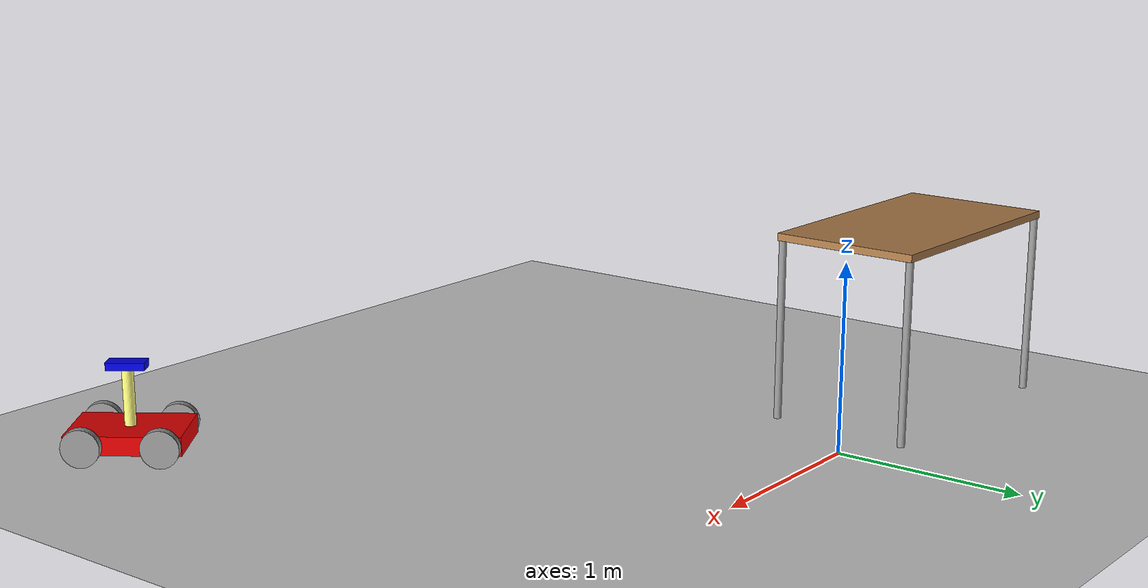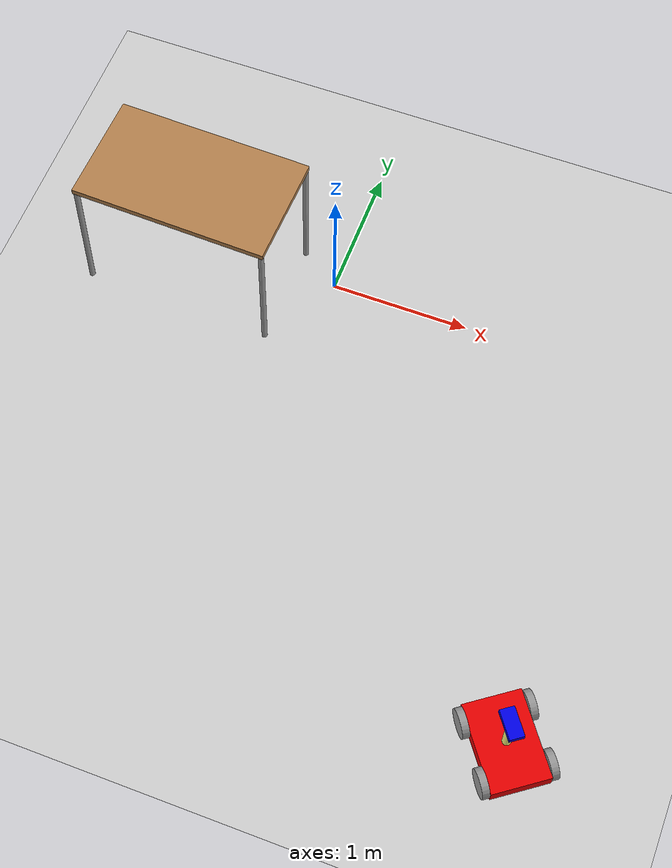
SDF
<sdf version="1.6">
 <world name="default">
  <model name="ground_plane">
   <static>1</static>
   <link name="link">
    <collision name="collision">
     <geometry><plane><normal>0 0 1</normal><size>100 100</size></plane></geometry>
     <surface><friction><ode><mu>100</mu><mu2>50</mu2></ode></friction></surface>
    </collision>
    <visual name="visual">
     <cast_shadows>0</cast_shadows>
     <geometry><plane><normal>0 0 1</normal><size>100 100</size></plane></geometry>
     <material>
      <script><uri>file://media/materials/scripts/gazebo.material</uri><name>Gazebo/Grey</name></script>
     </material>
    </visual>
   </link>
  </model>
  <model name="table_0_clone_clone_clone_clone">
   <static>0</static>
   <link name="link">
    <collision name="surface">
     <pose>0 0 1 0 -0 0</pose>
     <geometry><box><size>1.5 0.8 0.03</size></box></geometry>
     <surface><friction><ode><mu>0.6</mu><mu2>0.6</mu2></ode></friction></surface>
    </collision>
    <visual name="visual1">
     <pose>0 0 1 0 -0 0</pose>
     <geometry><box><size>1.4 0.8 0.04</size></box></geometry>
     <material>
      <script><uri>file://media/materials/scripts/gazebo.material</uri><name>Gazebo/Wood</name></script>
     </material>
    </visual>
    <collision name="front_left_leg">
     <pose>0.68 0.38 0.5 0 -0 0</pose>
     <geometry><cylinder><radius>0.02</radius><length>1</length></cylinder></geometry>
    </collision>
    <visual name="front_left_leg">
     <pose>0.68 0.38 0.5 0 -0 0</pose>
     <geometry><cylinder><radius>0.02</radius><length>1</length></cylinder></geometry>
     <material>
      <script><uri>file://media/materials/scripts/gazebo.material</uri><name>Gazebo/Grey</name></script>
     </material>
    </visual>
    <collision name="front_right_leg">
     <pose>0.68 -0.38 0.5 0 -0 0</pose>
     <geometry><cylinder><radius>0.02</radius><length>1</length></cylinder></geometry>
    </collision>
    <visual name="front_right_leg">
     <pose>0.68 -0.38 0.5 0 -0 0</pose>
     <geometry><cylinder><radius>0.02</radius><length>1</length></cylinder></geometry>
     <material>
      <script><uri>file://media/materials/scripts/gazebo.material</uri><name>Gazebo/Grey</name></script>
     </material>
    </visual>
    <collision name="back_right_leg">
     <pose>-0.68 -0.38 0.5 0 -0 0</pose>
     <geometry><cylinder><radius>0.02</radius><length>1</length></cylinder></geometry>
    </collision>
    <visual name="back_right_leg">
     <pose>-0.68 -0.38 0.5 0 -0 0</pose>
     <geometry><cylinder><radius>0.02</radius><length>1</length></cylinder></geometry>
     <material>
      <script><uri>file://media/materials/scripts/gazebo.material</uri><name>Gazebo/Grey</name></script>
     </material>
    </visual>
    <collision name="back_left_leg">
     <pose>-0.68 0.38 0.5 0 -0 0</pose>
     <geometry><cylinder><radius>0.02</radius><length>1</length></cylinder></geometry>
    </collision>
    <visual name="back_left_leg">
     <pose>-0.68 0.38 0.5 0 -0 0</pose>
     <geometry><cylinder><radius>0.02</radius><length>1</length></cylinder></geometry>
     <material>
      <script><uri>file://media/materials/scripts/gazebo.material</uri><name>Gazebo/Grey</name></script>
     </material>
    </visual>
    <inertial>
     <inertia><ixx>1</ixx><ixy>0</ixy><ixz>0</ixz><iyy>1</iyy><iyz>0</iyz><izz>1</izz></inertia>
     <mass>1</mass>
    </inertial>
   </link>
   <pose>-0.984849 -0.161 -9e-06 0 -1e-06 -0.030669</pose>
  </model>
  <model name="MyInspectionRobot">
   <link name="link_10">
    <pose>0 0 0.37 0 -0 0</pose>
    <inertial>
     <mass>1</mass>
     <inertia>
      <ixx>0.166667</ixx>
      <ixy>0</ixy>
      <ixz>0</ixz>
      <iyy>0.166667</iyy>
      <iyz>0</iyz>
      <izz>0.166667</izz>
     </inertia>
    </inertial>
    <visual name="visual">
     <geometry><box><size>0.2 0.1 0.04</size></box></geometry>
     <material>
      <lighting>1</lighting>
      <script><uri>file://media/materials/scripts/gazebo.material</uri><name>Gazebo/Grey</name></script>
      <ambient>0.3 0.3 0.3 1</ambient>
      <diffuse>0 0 0.9 1</diffuse>
      <specular>0.01 0.01 0.01 1</specular>
      <emissive>0 0 0 1</emissive>
      <shader type="vertex"><normal_map>__default__</normal_map></shader>
     </material>
    </visual>
    <collision name="collision">
     <geometry><box><size>0.2 0.1 0.04</size></box></geometry>
     <surface>
      <friction>
       <ode><mu>1</mu><mu2>1</mu2><fdir1>0 0 0</fdir1><slip1>0</slip1><slip2>0</slip2></ode>
       <torsional>
        <coefficient>1</coefficient>
        <patch_radius>0</patch_radius>
        <surface_radius>0</surface_radius>
        <use_patch_radius>1</use_patch_radius>
        <ode><slip>0</slip></ode>
       </torsional>
      </friction>
      <bounce><restitution_coefficient>0</restitution_coefficient><threshold>1e+06</threshold></bounce>
      <contact>
       <collide_without_contact>0</collide_without_contact>
       <collide_without_contact_bitmask>1</collide_without_contact_bitmask>
       <collide_bitmask>1</collide_bitmask>
       <ode>
        <soft_cfm>0</soft_cfm>
        <soft_erp>0.2</soft_erp>
        <kp>1e+13</kp>
        <kd>1</kd>
        <max_vel>0.01</max_vel>
        <min_depth>0</min_depth>
       </ode>
       <bullet>
        <split_impulse>1</split_impulse>
        <split_impulse_penetration_threshold>-0.01</split_impulse_penetration_threshold>
        <soft_cfm>0</soft_cfm>
        <soft_erp>0.2</soft_erp>
        <kp>1e+13</kp>
        <kd>1</kd>
       </bullet>
      </contact>
     </surface>
    </collision>
   </link>
   <link name="link_6">
    <inertial>
     <mass>1</mass>
     <inertia>
      <ixx>0.166667</ixx>
      <ixy>0</ixy>
      <ixz>0</ixz>
      <iyy>0.166667</iyy>
      <iyz>0</iyz>
      <izz>0.166667</izz>
     </inertia>
    </inertial>
    <visual name="visual">
     <geometry><box><size>0.6 0.4 0.1</size></box></geometry>
     <material>
      <lighting>1</lighting>
      <script><uri>file://media/materials/scripts/gazebo.material</uri><name>Gazebo/Grey</name></script>
      <ambient>0.3 0.3 0.3 1</ambient>
      <diffuse>0.9 0 0 1</diffuse>
      <specular>0.01 0.01 0.01 1</specular>
      <emissive>0 0 0 1</emissive>
      <shader type="vertex"><normal_map>__default__</normal_map></shader>
     </material>
    </visual>
    <collision name="collision">
     <geometry><box><size>0.6 0.4 0.1</size></box></geometry>
     <surface>
      <friction>
       <ode><mu>1</mu><mu2>1</mu2><fdir1>0 0 0</fdir1><slip1>0</slip1><slip2>0</slip2></ode>
       <torsional>
        <coefficient>1</coefficient>
        <patch_radius>0</patch_radius>
        <surface_radius>0</surface_radius>
        <use_patch_radius>1</use_patch_radius>
        <ode><slip>0</slip></ode>
       </torsional>
      </friction>
      <bounce><restitution_coefficient>0</restitution_coefficient><threshold>1e+06</threshold></bounce>
      <contact>
       <collide_without_contact>0</collide_without_contact>
       <collide_without_contact_bitmask>1</collide_without_contact_bitmask>
       <collide_bitmask>1</collide_bitmask>
       <ode>
        <soft_cfm>0</soft_cfm>
        <soft_erp>0.2</soft_erp>
        <kp>1e+13</kp>
        <kd>1</kd>
        <max_vel>0.01</max_vel>
        <min_depth>0</min_depth>
       </ode>
       <bullet>
        <split_impulse>1</split_impulse>
        <split_impulse_penetration_threshold>-0.01</split_impulse_penetration_threshold>
        <soft_cfm>0</soft_cfm>
        <soft_erp>0.2</soft_erp>
        <kp>1e+13</kp>
        <kd>1</kd>
       </bullet>
      </contact>
     </surface>
    </collision>
   </link>
   <link name="link_8">
    <pose>-0.2 -0.22501 0 1.5707 -0 0</pose>
    <inertial>
     <mass>1</mass>
     <inertia><ixx>0.145833</ixx><ixy>0</ixy><ixz>0</ixz><iyy>0.145833</iyy><iyz>0</iyz><izz>0.125</izz></inertia>
    </inertial>
    <visual name="visual">
     <geometry><cylinder><radius>0.1</radius><length>0.05</length></cylinder></geometry>
     <material>
      <lighting>1</lighting>
      <script><uri>file://media/materials/scripts/gazebo.material</uri><name>Gazebo/Grey</name></script>
      <ambient>0.3 0.3 0.3 1</ambient>
      <diffuse>0 0 0 1</diffuse>
      <specular>0.01 0.01 0.01 1</specular>
      <emissive>0 0 0 1</emissive>
      <shader type="vertex"><normal_map>__default__</normal_map></shader>
     </material>
    </visual>
    <collision name="collision">
     <geometry><cylinder><radius>0.1</radius><length>0.05</length></cylinder></geometry>
     <surface>
      <friction>
       <ode><mu>1</mu><mu2>1</mu2><fdir1>0 0 0</fdir1><slip1>0</slip1><slip2>0</slip2></ode>
       <torsional>
        <coefficient>1</coefficient>
        <patch_radius>0</patch_radius>
        <surface_radius>0</surface_radius>
        <use_patch_radius>1</use_patch_radius>
        <ode><slip>0</slip></ode>
       </torsional>
      </friction>
      <bounce><restitution_coefficient>0</restitution_coefficient><threshold>1e+06</threshold></bounce>
      <contact>
       <collide_without_contact>0</collide_without_contact>
       <collide_without_contact_bitmask>1</collide_without_contact_bitmask>
       <collide_bitmask>1</collide_bitmask>
       <ode>
        <soft_cfm>0</soft_cfm>
        <soft_erp>0.2</soft_erp>
        <kp>1e+13</kp>
        <kd>1</kd>
        <max_vel>0.01</max_vel>
        <min_depth>0</min_depth>
       </ode>
       <bullet>
        <split_impulse>1</split_impulse>
        <split_impulse_penetration_threshold>-0.01</split_impulse_penetration_threshold>
        <soft_cfm>0</soft_cfm>
        <soft_erp>0.2</soft_erp>
        <kp>1e+13</kp>
        <kd>1</kd>
       </bullet>
      </contact>
     </surface>
    </collision>
   </link>
   <link name="link_8_clone">
    <pose>-0.2 0.22501 0 1.5707 -0 0</pose>
    <inertial>
     <mass>1</mass>
     <inertia><ixx>0.145833</ixx><ixy>0</ixy><ixz>0</ixz><iyy>0.145833</iyy><iyz>0</iyz><izz>0.125</izz></inertia>
    </inertial>
    <visual name="visual">
     <geometry><cylinder><radius>0.1</radius><length>0.05</length></cylinder></geometry>
     <material>
      <lighting>1</lighting>
      <script><uri>file://media/materials/scripts/gazebo.material</uri><name>Gazebo/Grey</name></script>
      <ambient>0.3 0.3 0.3 1</ambient>
      <diffuse>0 0 0 1</diffuse>
      <specular>0.01 0.01 0.01 1</specular>
      <emissive>0 0 0 1</emissive>
      <shader type="vertex"><normal_map>__default__</normal_map></shader>
     </material>
    </visual>
    <collision name="collision">
     <geometry><cylinder><radius>0.1</radius><length>0.05</length></cylinder></geometry>
     <surface>
      <friction>
       <ode><mu>1</mu><mu2>1</mu2><fdir1>0 0 0</fdir1><slip1>0</slip1><slip2>0</slip2></ode>
       <torsional>
        <coefficient>1</coefficient>
        <patch_radius>0</patch_radius>
        <surface_radius>0</surface_radius>
        <use_patch_radius>1</use_patch_radius>
        <ode><slip>0</slip></ode>
       </torsional>
      </friction>
      <bounce><restitution_coefficient>0</restitution_coefficient><threshold>1e+06</threshold></bounce>
      <contact>
       <collide_without_contact>0</collide_without_contact>
       <collide_without_contact_bitmask>1</collide_without_contact_bitmask>
       <collide_bitmask>1</collide_bitmask>
       <ode>
        <soft_cfm>0</soft_cfm>
        <soft_erp>0.2</soft_erp>
        <kp>1e+13</kp>
        <kd>1</kd>
        <max_vel>0.01</max_vel>
        <min_depth>0</min_depth>
       </ode>
       <bullet>
        <split_impulse>1</split_impulse>
        <split_impulse_penetration_threshold>-0.01</split_impulse_penetration_threshold>
        <soft_cfm>0</soft_cfm>
        <soft_erp>0.2</soft_erp>
        <kp>1e+13</kp>
        <kd>1</kd>
       </bullet>
      </contact>
     </surface>
    </collision>
   </link>
   <link name="link_8_clone_clone">
    <pose>0.2 -0.22501 0 1.5707 -0 0</pose>
    <inertial>
     <mass>1</mass>
     <inertia><ixx>0.145833</ixx><ixy>0</ixy><ixz>0</ixz><iyy>0.145833</iyy><iyz>0</iyz><izz>0.125</izz></inertia>
    </inertial>
    <visual name="visual">
     <geometry><cylinder><radius>0.1</radius><length>0.05</length></cylinder></geometry>
     <material>
      <lighting>1</lighting>
      <script><uri>file://media/materials/scripts/gazebo.material</uri><name>Gazebo/Grey</name></script>
      <ambient>0.3 0.3 0.3 1</ambient>
      <diffuse>0 0 0 1</diffuse>
      <specular>0.01 0.01 0.01 1</specular>
      <emissive>0 0 0 1</emissive>
      <shader type="vertex"><normal_map>__default__</normal_map></shader>
     </material>
    </visual>
    <collision name="collision">
     <geometry><cylinder><radius>0.1</radius><length>0.05</length></cylinder></geometry>
     <surface>
      <friction>
       <ode><mu>1</mu><mu2>1</mu2><fdir1>0 0 0</fdir1><slip1>0</slip1><slip2>0</slip2></ode>
       <torsional>
        <coefficient>1</coefficient>
        <patch_radius>0</patch_radius>
        <surface_radius>0</surface_radius>
        <use_patch_radius>1</use_patch_radius>
        <ode><slip>0</slip></ode>
       </torsional>
      </friction>
      <bounce><restitution_coefficient>0</restitution_coefficient><threshold>1e+06</threshold></bounce>
      <contact>
       <collide_without_contact>0</collide_without_contact>
       <collide_without_contact_bitmask>1</collide_without_contact_bitmask>
       <collide_bitmask>1</collide_bitmask>
       <ode>
        <soft_cfm>0</soft_cfm>
        <soft_erp>0.2</soft_erp>
        <kp>1e+13</kp>
        <kd>1</kd>
        <max_vel>0.01</max_vel>
        <min_depth>0</min_depth>
       </ode>
       <bullet>
        <split_impulse>1</split_impulse>
        <split_impulse_penetration_threshold>-0.01</split_impulse_penetration_threshold>
        <soft_cfm>0</soft_cfm>
        <soft_erp>0.2</soft_erp>
        <kp>1e+13</kp>
        <kd>1</kd>
       </bullet>
      </contact>
     </surface>
    </collision>
   </link>
   <link name="link_8_clone_clone_clone">
    <pose>0.2 0.22501 0 1.5707 -0 0</pose>
    <inertial>
     <mass>1</mass>
     <inertia><ixx>0.145833</ixx><ixy>0</ixy><ixz>0</ixz><iyy>0.145833</iyy><iyz>0</iyz><izz>0.125</izz></inertia>
    </inertial>
    <visual name="visual">
     <geometry><cylinder><radius>0.1</radius><length>0.05</length></cylinder></geometry>
     <material>
      <lighting>1</lighting>
      <script><uri>file://media/materials/scripts/gazebo.material</uri><name>Gazebo/Grey</name></script>
      <ambient>0.3 0.3 0.3 1</ambient>
      <diffuse>0 0 0 1</diffuse>
      <specular>0.01 0.01 0.01 1</specular>
      <emissive>0 0 0 1</emissive>
      <shader type="vertex"><normal_map>__default__</normal_map></shader>
     </material>
    </visual>
    <collision name="collision">
     <geometry><cylinder><radius>0.1</radius><length>0.05</length></cylinder></geometry>
     <surface>
      <friction>
       <ode><mu>1</mu><mu2>1</mu2><fdir1>0 0 0</fdir1><slip1>0</slip1><slip2>0</slip2></ode>
       <torsional>
        <coefficient>1</coefficient>
        <patch_radius>0</patch_radius>
        <surface_radius>0</surface_radius>
        <use_patch_radius>1</use_patch_radius>
        <ode><slip>0</slip></ode>
       </torsional>
      </friction>
      <bounce><restitution_coefficient>0</restitution_coefficient><threshold>1e+06</threshold></bounce>
      <contact>
       <collide_without_contact>0</collide_without_contact>
       <collide_without_contact_bitmask>1</collide_without_contact_bitmask>
       <collide_bitmask>1</collide_bitmask>
       <ode>
        <soft_cfm>0</soft_cfm>
        <soft_erp>0.2</soft_erp>
        <kp>1e+13</kp>
        <kd>1</kd>
        <max_vel>0.01</max_vel>
        <min_depth>0</min_depth>
       </ode>
       <bullet>
        <split_impulse>1</split_impulse>
        <split_impulse_penetration_threshold>-0.01</split_impulse_penetration_threshold>
        <soft_cfm>0</soft_cfm>
        <soft_erp>0.2</soft_erp>
        <kp>1e+13</kp>
        <kd>1</kd>
       </bullet>
      </contact>
     </surface>
    </collision>
   </link>
   <link name="link_9">
    <pose>0 0 0.2 0 -0 0</pose>
    <inertial>
     <mass>1</mass>
     <inertia><ixx>0.145833</ixx><ixy>0</ixy><ixz>0</ixz><iyy>0.145833</iyy><iyz>0</iyz><izz>0.125</izz></inertia>
    </inertial>
    <visual name="visual">
     <geometry><cylinder><radius>0.03</radius><length>0.3</length></cylinder></geometry>
     <material>
      <lighting>1</lighting>
      <script><uri>file://media/materials/scripts/gazebo.material</uri><name>Gazebo/Grey</name></script>
      <ambient>0.3 0.3 0.3 1</ambient>
      <diffuse>1 1 0.5 1</diffuse>
      <specular>0.01 0.01 0.01 1</specular>
      <emissive>0 0 0 1</emissive>
      <shader type="vertex"><normal_map>__default__</normal_map></shader>
     </material>
    </visual>
    <collision name="collision">
     <geometry><cylinder><radius>0.03</radius><length>0.3</length></cylinder></geometry>
     <surface>
      <friction>
       <ode><mu>1</mu><mu2>1</mu2><fdir1>0 0 0</fdir1><slip1>0</slip1><slip2>0</slip2></ode>
       <torsional>
        <coefficient>1</coefficient>
        <patch_radius>0</patch_radius>
        <surface_radius>0</surface_radius>
        <use_patch_radius>1</use_patch_radius>
        <ode><slip>0</slip></ode>
       </torsional>
      </friction>
      <bounce><restitution_coefficient>0</restitution_coefficient><threshold>1e+06</threshold></bounce>
      <contact>
       <collide_without_contact>0</collide_without_contact>
       <collide_without_contact_bitmask>1</collide_without_contact_bitmask>
       <collide_bitmask>1</collide_bitmask>
       <ode>
        <soft_cfm>0</soft_cfm>
        <soft_erp>0.2</soft_erp>
        <kp>1e+13</kp>
        <kd>1</kd>
        <max_vel>0.01</max_vel>
        <min_depth>0</min_depth>
       </ode>
       <bullet>
        <split_impulse>1</split_impulse>
        <split_impulse_penetration_threshold>-0.01</split_impulse_penetration_threshold>
        <soft_cfm>0</soft_cfm>
        <soft_erp>0.2</soft_erp>
        <kp>1e+13</kp>
        <kd>1</kd>
       </bullet>
      </contact>
     </surface>
    </collision>
   </link>
   <joint name="link_6_JOINT_1" type="revolute">
    <parent>link_6</parent>
    <child>link_8</child>
    <axis>
     <xyz>0 0 1</xyz>
     <use_parent_model_frame>0</use_parent_model_frame>
     <limit>
      <lower>-1.79769e+308</lower>
      <upper>1.79769e+308</upper>
      <effort>-1</effort>
      <velocity>-1</velocity>
     </limit>
     <dynamics>
      <spring_reference>0</spring_reference>
      <spring_stiffness>0</spring_stiffness>
      <damping>0</damping>
     </dynamics>
    </axis>
    <physics>
     <ode><limit><cfm>0</cfm><erp>0.2</erp></limit><suspension><cfm>0</cfm><erp>0.2</erp></suspension></ode>
    </physics>
   </joint>
   <joint name="link_6_JOINT_2" type="revolute">
    <parent>link_6</parent>
    <child>link_8_clone</child>
    <axis>
     <xyz>0 0 1</xyz>
     <use_parent_model_frame>0</use_parent_model_frame>
     <limit>
      <lower>-1.79769e+308</lower>
      <upper>1.79769e+308</upper>
      <effort>-1</effort>
      <velocity>-1</velocity>
     </limit>
     <dynamics>
      <spring_reference>0</spring_reference>
      <spring_stiffness>0</spring_stiffness>
      <damping>0</damping>
     </dynamics>
    </axis>
    <physics>
     <ode><limit><cfm>0</cfm><erp>0.2</erp></limit><suspension><cfm>0</cfm><erp>0.2</erp></suspension></ode>
    </physics>
   </joint>
   <joint name="link_6_JOINT_3" type="revolute">
    <parent>link_6</parent>
    <child>link_8_clone_clone</child>
    <axis>
     <xyz>0 0 1</xyz>
     <use_parent_model_frame>0</use_parent_model_frame>
     <limit>
      <lower>-1.79769e+308</lower>
      <upper>1.79769e+308</upper>
      <effort>-1</effort>
      <velocity>-1</velocity>
     </limit>
     <dynamics>
      <spring_reference>0</spring_reference>
      <spring_stiffness>0</spring_stiffness>
      <damping>0</damping>
     </dynamics>
    </axis>
    <physics>
     <ode><limit><cfm>0</cfm><erp>0.2</erp></limit><suspension><cfm>0</cfm><erp>0.2</erp></suspension></ode>
    </physics>
   </joint>
   <joint name="link_6_JOINT_4" type="revolute">
    <parent>link_6</parent>
    <child>link_8_clone_clone_clone</child>
    <axis>
     <xyz>0 0 1</xyz>
     <use_parent_model_frame>0</use_parent_model_frame>
     <limit>
      <lower>-1.79769e+308</lower>
      <upper>1.79769e+308</upper>
      <effort>-1</effort>
      <velocity>-1</velocity>
     </limit>
     <dynamics>
      <spring_reference>0</spring_reference>
      <spring_stiffness>0</spring_stiffness>
      <damping>0</damping>
     </dynamics>
    </axis>
    <physics>
     <ode><limit><cfm>0</cfm><erp>0.2</erp></limit><suspension><cfm>0</cfm><erp>0.2</erp></suspension></ode>
    </physics>
   </joint>
   <joint name="link_6_JOINT_5" type="revolute">
    <parent>link_6</parent>
    <child>link_9</child>
    <pose>0 0 -0.15 0 -0 0</pose>
    <axis>
     <xyz>0 0 1</xyz>
     <use_parent_model_frame>0</use_parent_model_frame>
     <limit>
      <lower>-1.79769e+308</lower>
      <upper>1.79769e+308</upper>
      <effort>-1</effort>
      <velocity>-1</velocity>
     </limit>
     <dynamics>
      <spring_reference>0</spring_reference>
      <spring_stiffness>0</spring_stiffness>
      <damping>0</damping>
     </dynamics>
    </axis>
    <physics>
     <ode><limit><cfm>0</cfm><erp>0.2</erp></limit><suspension><cfm>0</cfm><erp>0.2</erp></suspension></ode>
    </physics>
   </joint>
   <joint name="link_9_JOINT_7" type="revolute">
    <parent>link_9</parent>
    <child>link_10</child>
    <pose>0 0 -0.02 0 -0 0</pose>
    <axis>
     <xyz>0 0 1</xyz>
     <use_parent_model_frame>0</use_parent_model_frame>
     <limit>
      <lower>-1.79769e+308</lower>
      <upper>1.79769e+308</upper>
      <effort>-1</effort>
      <velocity>-1</velocity>
     </limit>
     <dynamics>
      <spring_reference>0</spring_reference>
      <spring_stiffness>0</spring_stiffness>
      <damping>0</damping>
     </dynamics>
    </axis>
    <physics>
     <ode><limit><cfm>0</cfm><erp>0.2</erp></limit><suspension><cfm>0</cfm><erp>0.2</erp></suspension></ode>
    </physics>
   </joint>
   <static>0</static>
   <pose>2.20999 -2.85168 0.100001 1e-06 -9e-06 -0.936539</pose>
  </model>
 </world>
</sdf>
